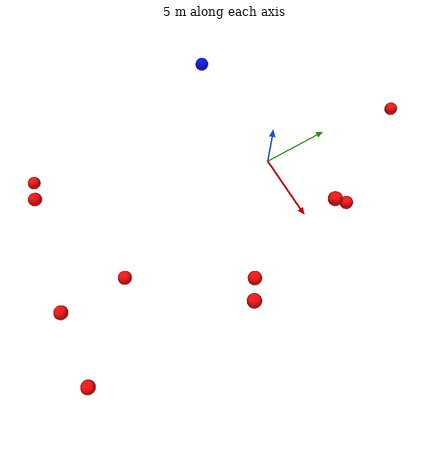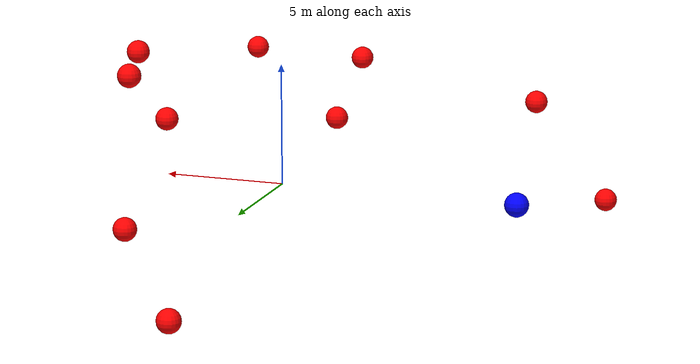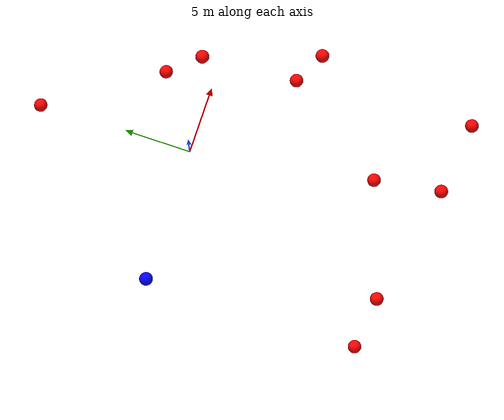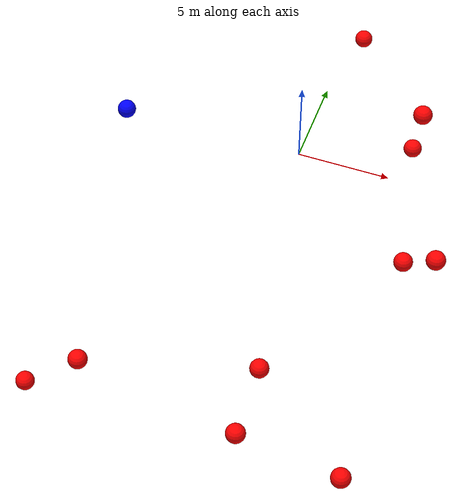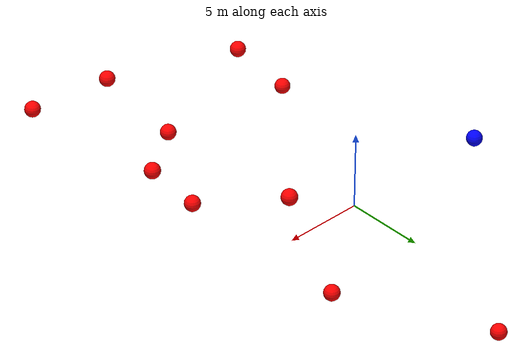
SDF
<?xml version="1.0" ?>
<sdf version="1.8">
    <world name="3d_world">
        <physics name="1ms" type="ode">
            <max_step_size>0.001</max_step_size>
            <real_time_factor>1.0</real_time_factor>
            <real_time_update_rate>1000.0</real_time_update_rate>
        </physics>
        <gravity>0 0 0</gravity>

        <plugin
            filename="gz-sim-physics-system"
            name="gz::sim::v8::systems::Physics">
        </plugin>
        <plugin
            filename="libignition-gazebo-user-commands-system.so"
            name="ignition::gazebo::systems::UserCommands">
        </plugin>
        <plugin
            filename="gz-sim-scene-broadcaster-system"
            name="gz::sim::systems::SceneBroadcaster">
        </plugin>
        <plugin
            filename="gz-sim-sensors-system"
            name="gz::sim::systems::Sensors">
            <render_engine>ogre2</render_engine>
        </plugin>

        <light type="directional" name="sun">
            <cast_shadows>true</cast_shadows>
            <pose>0 0 10 0 0 0</pose>
            <diffuse>0.8 0.8 0.8 1</diffuse>
            <specular>0.2 0.2 0.2 1</specular>
            <attenuation>
                <range>1000</range>
                <constant>0.9</constant>
                <linear>0.01</linear>
                <quadratic>0.001</quadratic>
            </attenuation>
            <direction>-0.5 0.1 -0.9</direction>
        </light>

        <!-- AGENTE -->
        <model name='agente' canonical_link='chassis'>
            <pose relative_to='world'>-10.0 0 0.0 0 0 0</pose>
            <link name='chassis'>
                <pose relative_to='__model__'>0.0 0 0.0 0 0 0</pose>
                <inertial>
                    <mass>1.14395</mass>
                    <inertia>
                        <ixx>0.095329</ixx>
                        <ixy>0</ixy>
                        <ixz>0</ixz>
                        <iyy>0.381317</iyy>
                        <iyz>0</iyz>
                        <izz>0.476646</izz>
                    </inertia>
                </inertial>
                <visual name='visual'>
                    <geometry>
                        <sphere>
                            <radius>0.5</radius>
                        </sphere>
                    </geometry>
                    <material>
                        <ambient>0.0 0.0 1.0 1</ambient>
                        <diffuse>0.0 0.0 1.0 1</diffuse>
                        <specular>0.0 0.0 1.0 1</specular>
                    </material>
                </visual>
                <collision name='collision'>
                    <geometry>
                        <sphere>
                            <radius>0.5</radius>
                        </sphere>
                    </geometry>
                </collision>
                <enable_gravity>false</enable_gravity>
            </link>

            <link name='lidar_link'>
                <pose relative_to='chassis'>0.0 0 0.1 0 0 0</pose>
                <inertial>
                    <mass>0.1</mass>
                    <inertia>
                        <ixx>0.000166667</ixx>
                        <iyy>0.000166667</iyy>
                        <izz>0.000166667</izz>
                    </inertia>
                </inertial>
                <collision name='collision'>
                    <geometry>
                        <cylinder>
                            <radius>0.05</radius>
                            <length>0.1</length>
                        </cylinder>
                    </geometry>
                </collision>
                <visual name='visual'>
                    <geometry>
                        <cylinder>
                            <radius>0.05</radius>
                            <length>0.1</length>
                        </cylinder>
                    </geometry>
                    <material>
                        <ambient>0.0 1.0 0.0 1</ambient>
                        <diffuse>0.0 1.0 0.0 1</diffuse>
                        <specular>0.0 1.0 0.0 1</specular>
                    </material>
                </visual>
                <sensor name="lidar" type="gpu_lidar">
                    <topic>scan</topic>
                    <update_rate>10</update_rate>
                    <lidar>
                        <scan>
                            <horizontal>
                                <samples>5000</samples>
                                <resolution>1</resolution>
                                <min_angle>-3.14159</min_angle>
                                <max_angle>3.14159</max_angle>
                            </horizontal>
                        </scan>
                        <range>
                            <min>0.1</min>
                            <max>10.0</max>
                            <resolution>0.01</resolution>
                        </range>
                    </lidar>
                    <visualize>true</visualize>
                    <always_on>true</always_on>
                    <update_rate>10</update_rate>
                    <pose_frame>lidar</pose_frame>
                </sensor>
                <enable_gravity>false</enable_gravity>
            </link>

            <joint name="lidar_joint" type="fixed">
                <parent>chassis</parent>
                <child>lidar_link</child>
            </joint>

            <plugin
                filename="ignition-gazebo-joint-state-publisher-system"
                name="ignition::gazebo::systems::JointStatePublisher">
            </plugin>
            <plugin
                filename="ignition-gazebo-odometry-publisher-system"
                name="ignition::gazebo::systems::OdometryPublisher">
                <dimensions>3</dimensions>
            </plugin>
            <plugin
                filename="ignition-gazebo-velocity-control-system"
                name="ignition::gazebo::systems::VelocityControl">
                <initial_linear>0.0 0 0</initial_linear>
                <initial_angular>0 0 0.0</initial_angular>
            </plugin>
            <plugin
                filename="libignition-gazebo-pose-publisher-system.so"
                name="ignition::gazebo::systems::PosePublisher">
                <topic>/agente/pose</topic>
                <frame_id>agente</frame_id>
                <update_rate>30</update_rate>
            </plugin>
        </model>

        <!-- OBSTACLE 1 -->
        <model name='obstacle_1' canonical_link='obstacle'>
            <static>false</static>
            <pose relative_to='world'>0.17 11.95 -2.35 0 0 0</pose>
            <link name='obstacle'>
                <pose relative_to='__model__'>0.0 0 0.0 0 0 0</pose>
                <visual name='visual'>
                    <geometry>
                        <sphere>
                            <radius>0.50</radius>
                        </sphere>
                    </geometry>
                    <material>
                        <ambient>1.0 0.0 0.0 1</ambient>
                        <diffuse>1.0 0.0 0.0 1</diffuse>
                        <specular>1.0 0.0 0.0 1</specular>
                    </material>
                </visual>
                <collision name='collision'>
                    <geometry>
                        <sphere>
                            <radius>0.50</radius>
                        </sphere>
                    </geometry>
                </collision>
                <enable_gravity>false</enable_gravity>
            </link>

            <plugin
                filename="ignition-gazebo-velocity-control-system"
                name="ignition::gazebo::systems::VelocityControl">
                <initial_linear>-0.51 -1.90 0.37</initial_linear>
                <initial_angular>0 0 0</initial_angular>
            </plugin>

            <plugin
                filename="ignition-gazebo-odometry-publisher-system"
                name="ignition::gazebo::systems::OdometryPublisher">
                <dimensions>3</dimensions>
            </plugin>
        </model>

        <!-- OBSTACLE 2 -->
        <model name='obstacle_2' canonical_link='obstacle'>
            <static>false</static>
            <pose relative_to='world'>-6.01 -16.53 0.12 0 0 0</pose>
            <link name='obstacle'>
                <pose relative_to='__model__'>0.0 0 0.0 0 0 0</pose>
                <visual name='visual'>
                    <geometry>
                        <sphere>
                            <radius>0.50</radius>
                        </sphere>
                    </geometry>
                    <material>
                        <ambient>1.0 0.0 0.0 1</ambient>
                        <diffuse>1.0 0.0 0.0 1</diffuse>
                        <specular>1.0 0.0 0.0 1</specular>
                    </material>
                </visual>
                <collision name='collision'>
                    <geometry>
                        <sphere>
                            <radius>0.50</radius>
                        </sphere>
                    </geometry>
                </collision>
                <enable_gravity>false</enable_gravity>
            </link>

            <plugin
                filename="ignition-gazebo-velocity-control-system"
                name="ignition::gazebo::systems::VelocityControl">
                <initial_linear>0.91 1.78 -0.01</initial_linear>
                <initial_angular>0 0 0</initial_angular>
            </plugin>

            <plugin
                filename="ignition-gazebo-odometry-publisher-system"
                name="ignition::gazebo::systems::OdometryPublisher">
                <dimensions>3</dimensions>
            </plugin>
        </model>

        <!-- OBSTACLE 3 -->
        <model name='obstacle_3' canonical_link='obstacle'>
            <static>false</static>
            <pose relative_to='world'>6.25 1.07 4.31 0 0 0</pose>
            <link name='obstacle'>
                <pose relative_to='__model__'>0.0 0 0.0 0 0 0</pose>
                <visual name='visual'>
                    <geometry>
                        <sphere>
                            <radius>0.50</radius>
                        </sphere>
                    </geometry>
                    <material>
                        <ambient>1.0 0.0 0.0 1</ambient>
                        <diffuse>1.0 0.0 0.0 1</diffuse>
                        <specular>1.0 0.0 0.0 1</specular>
                    </material>
                </visual>
                <collision name='collision'>
                    <geometry>
                        <sphere>
                            <radius>0.50</radius>
                        </sphere>
                    </geometry>
                </collision>
                <enable_gravity>false</enable_gravity>
            </link>

            <plugin
                filename="ignition-gazebo-velocity-control-system"
                name="ignition::gazebo::systems::VelocityControl">
                <initial_linear>-1.29 -0.25 -1.01</initial_linear>
                <initial_angular>0 0 0</initial_angular>
            </plugin>

            <plugin
                filename="ignition-gazebo-odometry-publisher-system"
                name="ignition::gazebo::systems::OdometryPublisher">
                <dimensions>3</dimensions>
            </plugin>
        </model>

        <!-- OBSTACLE 4 -->
        <model name='obstacle_4' canonical_link='obstacle'>
            <static>false</static>
            <pose relative_to='world'>2.93 -18.53 1.06 0 0 0</pose>
            <link name='obstacle'>
                <pose relative_to='__model__'>0.0 0 0.0 0 0 0</pose>
                <visual name='visual'>
                    <geometry>
                        <sphere>
                            <radius>0.50</radius>
                        </sphere>
                    </geometry>
                    <material>
                        <ambient>1.0 0.0 0.0 1</ambient>
                        <diffuse>1.0 0.0 0.0 1</diffuse>
                        <specular>1.0 0.0 0.0 1</specular>
                    </material>
                </visual>
                <collision name='collision'>
                    <geometry>
                        <sphere>
                            <radius>0.50</radius>
                        </sphere>
                    </geometry>
                </collision>
                <enable_gravity>false</enable_gravity>
            </link>

            <plugin
                filename="ignition-gazebo-velocity-control-system"
                name="ignition::gazebo::systems::VelocityControl">
                <initial_linear>-0.33 1.97 -0.11</initial_linear>
                <initial_angular>0 0 0</initial_angular>
            </plugin>

            <plugin
                filename="ignition-gazebo-odometry-publisher-system"
                name="ignition::gazebo::systems::OdometryPublisher">
                <dimensions>3</dimensions>
            </plugin>
        </model>

        <!-- OBSTACLE 5 -->
        <model name='obstacle_5' canonical_link='obstacle'>
            <static>false</static>
            <pose relative_to='world'>9.31 -7.15 3.32 0 0 0</pose>
            <link name='obstacle'>
                <pose relative_to='__model__'>0.0 0 0.0 0 0 0</pose>
                <visual name='visual'>
                    <geometry>
                        <sphere>
                            <radius>0.50</radius>
                        </sphere>
                    </geometry>
                    <material>
                        <ambient>1.0 0.0 0.0 1</ambient>
                        <diffuse>1.0 0.0 0.0 1</diffuse>
                        <specular>1.0 0.0 0.0 1</specular>
                    </material>
                </visual>
                <collision name='collision'>
                    <geometry>
                        <sphere>
                            <radius>0.50</radius>
                        </sphere>
                    </geometry>
                </collision>
                <enable_gravity>false</enable_gravity>
            </link>

            <plugin
                filename="ignition-gazebo-velocity-control-system"
                name="ignition::gazebo::systems::VelocityControl">
                <initial_linear>-1.49 1.21 -0.56</initial_linear>
                <initial_angular>0 0 0</initial_angular>
            </plugin>

            <plugin
                filename="ignition-gazebo-odometry-publisher-system"
                name="ignition::gazebo::systems::OdometryPublisher">
                <dimensions>3</dimensions>
            </plugin>
        </model>

        <!-- OBSTACLE 6 -->
        <model name='obstacle_6' canonical_link='obstacle'>
            <static>false</static>
            <pose relative_to='world'>8.31 -19.16 1.04 0 0 0</pose>
            <link name='obstacle'>
                <pose relative_to='__model__'>0.0 0 0.0 0 0 0</pose>
                <visual name='visual'>
                    <geometry>
                        <sphere>
                            <radius>0.50</radius>
                        </sphere>
                    </geometry>
                    <material>
                        <ambient>1.0 0.0 0.0 1</ambient>
                        <diffuse>1.0 0.0 0.0 1</diffuse>
                        <specular>1.0 0.0 0.0 1</specular>
                    </material>
                </visual>
                <collision name='collision'>
                    <geometry>
                        <sphere>
                            <radius>0.50</radius>
                        </sphere>
                    </geometry>
                </collision>
                <enable_gravity>false</enable_gravity>
            </link>

            <plugin
                filename="ignition-gazebo-velocity-control-system"
                name="ignition::gazebo::systems::VelocityControl">
                <initial_linear>-1.02 1.72 -0.09</initial_linear>
                <initial_angular>0 0 0</initial_angular>
            </plugin>

            <plugin
                filename="ignition-gazebo-odometry-publisher-system"
                name="ignition::gazebo::systems::OdometryPublisher">
                <dimensions>3</dimensions>
            </plugin>
        </model>

        <!-- OBSTACLE 7 -->
        <model name='obstacle_7' canonical_link='obstacle'>
            <static>false</static>
            <pose relative_to='world'>7.46 -5.81 0.78 0 0 0</pose>
            <link name='obstacle'>
                <pose relative_to='__model__'>0.0 0 0.0 0 0 0</pose>
                <visual name='visual'>
                    <geometry>
                        <sphere>
                            <radius>0.50</radius>
                        </sphere>
                    </geometry>
                    <material>
                        <ambient>1.0 0.0 0.0 1</ambient>
                        <diffuse>1.0 0.0 0.0 1</diffuse>
                        <specular>1.0 0.0 0.0 1</specular>
                    </material>
                </visual>
                <collision name='collision'>
                    <geometry>
                        <sphere>
                            <radius>0.50</radius>
                        </sphere>
                    </geometry>
                </collision>
                <enable_gravity>false</enable_gravity>
            </link>

            <plugin
                filename="ignition-gazebo-velocity-control-system"
                name="ignition::gazebo::systems::VelocityControl">
                <initial_linear>-1.69 1.06 -0.14</initial_linear>
                <initial_angular>0 0 0</initial_angular>
            </plugin>

            <plugin
                filename="ignition-gazebo-odometry-publisher-system"
                name="ignition::gazebo::systems::OdometryPublisher">
                <dimensions>3</dimensions>
            </plugin>
        </model>

        <!-- OBSTACLE 8 -->
        <model name='obstacle_8' canonical_link='obstacle'>
            <static>false</static>
            <pose relative_to='world'>-9.41 -16.10 -4.02 0 0 0</pose>
            <link name='obstacle'>
                <pose relative_to='__model__'>0.0 0 0.0 0 0 0</pose>
                <visual name='visual'>
                    <geometry>
                        <sphere>
                            <radius>0.50</radius>
                        </sphere>
                    </geometry>
                    <material>
                        <ambient>1.0 0.0 0.0 1</ambient>
                        <diffuse>1.0 0.0 0.0 1</diffuse>
                        <specular>1.0 0.0 0.0 1</specular>
                    </material>
                </visual>
                <collision name='collision'>
                    <geometry>
                        <sphere>
                            <radius>0.50</radius>
                        </sphere>
                    </geometry>
                </collision>
                <enable_gravity>false</enable_gravity>
            </link>

            <plugin
                filename="ignition-gazebo-velocity-control-system"
                name="ignition::gazebo::systems::VelocityControl">
                <initial_linear>0.70 1.82 0.45</initial_linear>
                <initial_angular>0 0 0</initial_angular>
            </plugin>

            <plugin
                filename="ignition-gazebo-odometry-publisher-system"
                name="ignition::gazebo::systems::OdometryPublisher">
                <dimensions>3</dimensions>
            </plugin>
        </model>

        <!-- OBSTACLE 9 -->
        <model name='obstacle_9' canonical_link='obstacle'>
            <static>false</static>
            <pose relative_to='world'>5.42 3.76 -1.42 0 0 0</pose>
            <link name='obstacle'>
                <pose relative_to='__model__'>0.0 0 0.0 0 0 0</pose>
                <visual name='visual'>
                    <geometry>
                        <sphere>
                            <radius>0.50</radius>
                        </sphere>
                    </geometry>
                    <material>
                        <ambient>1.0 0.0 0.0 1</ambient>
                        <diffuse>1.0 0.0 0.0 1</diffuse>
                        <specular>1.0 0.0 0.0 1</specular>
                    </material>
                </visual>
                <collision name='collision'>
                    <geometry>
                        <sphere>
                            <radius>0.50</radius>
                        </sphere>
                    </geometry>
                </collision>
                <enable_gravity>false</enable_gravity>
            </link>

            <plugin
                filename="ignition-gazebo-velocity-control-system"
                name="ignition::gazebo::systems::VelocityControl">
                <initial_linear>0.22 -0.55 0.21</initial_linear>
                <initial_angular>0 0 0</initial_angular>
            </plugin>

            <plugin
                filename="ignition-gazebo-odometry-publisher-system"
                name="ignition::gazebo::systems::OdometryPublisher">
                <dimensions>3</dimensions>
            </plugin>
        </model>

        <!-- OBSTACLE 10 -->
        <model name='obstacle_10' canonical_link='obstacle'>
            <static>false</static>
            <pose relative_to='world'>2.43 -13.57 -0.59 0 0 0</pose>
            <link name='obstacle'>
                <pose relative_to='__model__'>0.0 0 0.0 0 0 0</pose>
                <visual name='visual'>
                    <geometry>
                        <sphere>
                            <radius>0.50</radius>
                        </sphere>
                    </geometry>
                    <material>
                        <ambient>1.0 0.0 0.0 1</ambient>
                        <diffuse>1.0 0.0 0.0 1</diffuse>
                        <specular>1.0 0.0 0.0 1</specular>
                    </material>
                </visual>
                <collision name='collision'>
                    <geometry>
                        <sphere>
                            <radius>0.50</radius>
                        </sphere>
                    </geometry>
                </collision>
                <enable_gravity>false</enable_gravity>
            </link>

            <plugin
                filename="ignition-gazebo-velocity-control-system"
                name="ignition::gazebo::systems::VelocityControl">
                <initial_linear>-0.09 2.00 0.09</initial_linear>
                <initial_angular>0 0 0</initial_angular>
            </plugin>

            <plugin
                filename="ignition-gazebo-odometry-publisher-system"
                name="ignition::gazebo::systems::OdometryPublisher">
                <dimensions>3</dimensions>
            </plugin>
        </model>

    </world>
</sdf>
